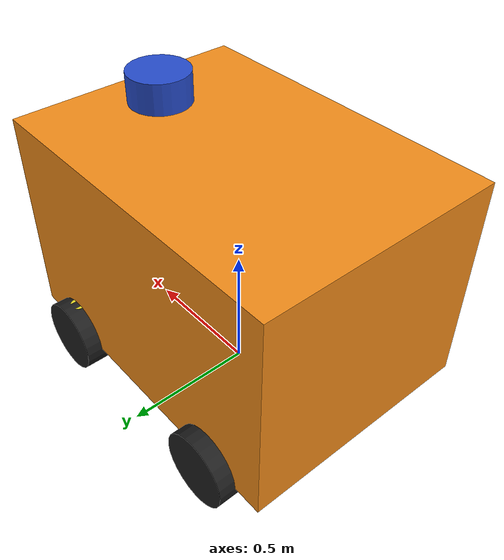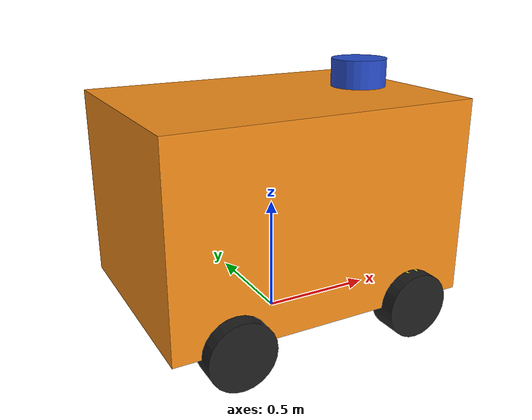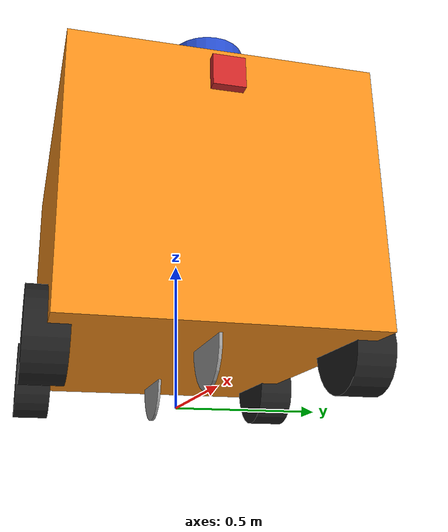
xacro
<?xml version="1.0"?>
<robot xmlns:xacro="http://www.ros.org/wiki/xacro"  name="mrover">

    <xacro:include filename="robot_core_noetic_main.xacro" />
    <xacro:include filename="sensors/lidar.xacro" />
    <xacro:include filename="sensors/camera.xacro" />
    <xacro:include filename="sensors/imu.xacro" />

</robot>

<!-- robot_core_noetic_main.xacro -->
<robot xmlns:xacro="http://www.ros.org/wiki/xacro" >
    <xacro:include filename="inertial_macros.xacro"/>
    <xacro:include filename="materials.xacro"/>

    <!-- Constants for robot dimensions -->
    <xacro:property name="PI" value="3.1415926535897931"/>
    <xacro:property name="base_mass" value="8.0" /> <!-- arbitrary value for base mass -->
    <xacro:property name="base_width" value="0.94" />
    <xacro:property name="base_length" value="1.3" />
    <xacro:property name="base_height" value="0.83" />
    <xacro:property name="wheelbase" value="0.8" />
    <xacro:property name="wheel_mass" value="0.34055" /> <!-- arbitrary value for wheel mass -->
    <xacro:property name="wheel_len" value="0.125" />
    <xacro:property name="wheel_radius" value="0.1397" />
    <xacro:property name="steer_mass" value="0.34055" /> <!-- arbitrary value for wheel mass -->
    <xacro:property name="steer_len" value="0.025" />
    <xacro:property name="steer_radius" value="0.03" />

    <!-- Base Link -->
    <link name="base_link" />
    <!-- BASE_FOOTPRINT LINK -->

    <joint name="base_footprint_joint" type="fixed">
        <parent link="base_link"/>
        <child link="base_footprint"/>
        <origin xyz="0 0 0" rpy="0 0 0"/>
    </joint>

    <link name="base_footprint">
    </link>

    <!-- Chassis -->

    <link name="chassis_link">
        <visual>
            <origin xyz="0 0 0" rpy="0 0 0"/>
            <geometry>
                <box size="${base_length} ${base_width} ${base_height}"/>
            </geometry>
            <material name="orange"/>
        </visual>
        <collision>
            <origin xyz="0 0 0" rpy="0 0 0"/>
            <geometry>
                <box size="${base_length} ${base_width} ${base_height}"/>
            </geometry>
        </collision>
        <inertial>
            <origin xyz="0 0 0" rpy="0 0 0"/>
            <mass value="${base_mass}"/>
            <inertia
                ixx="0.000270" ixy="0.0" ixz="0.0"
                iyy="0.000270" iyz="0.0"
                izz="0.000426"/>
        </inertial>
    </link>
    <gazebo reference="chassis_link">
        <material>Gazebo/Orange</material>
    </gazebo>

    <joint name="chassis_joint" type="fixed">
        <parent link="base_link"/>
        <child link="chassis_link"/>
        <origin xyz="0 0 ${base_height/2 + wheel_radius}" rpy="0 0 0"/>
        <axis xyz="0 0 1"/>
        <dynamics damping="0.2"/>
    </joint>

    <!-- rear wheels -->

    <!-- virtual rear wheel -->

    <link name="virtual_rear_wheel">
        <visual>
            <origin xyz="0 0 0" rpy="${PI/2} 0 ${PI/2}"/>
            <geometry>
                <cylinder length="0.01" radius="${wheel_radius}"/>
            </geometry>
            <material name="invisible"/>
        </visual>
        <collision>
            <origin xyz="0 0 0" rpy="${PI/2} 0 ${PI/2}"/>
            <geometry>
                <cylinder length="0.01" radius="${wheel_radius}"/>
            </geometry>
        </collision>
        <inertial>
            <origin xyz="0 0 0" rpy="${PI/2} 0 ${PI/2}"/>
            <mass value="${wheel_mass}"/>
            <inertia
                ixx="0.000270" ixy="0.0" ixz="0.0"
                iyy="0.000270" iyz="0.0"
                izz="0.000426"/>
        </inertial>
    </link>
    <gazebo reference="virtual_rear_wheel">
        <material>Gazebo/GreyTransparent</material>
    </gazebo>

    <joint name="virtual_rear_wheel_joint" type="continuous">
        <parent link="chassis_link"/>
        <child link="virtual_rear_wheel"/>
        <origin xyz="-${wheelbase/2} 0 -${base_height/2}" rpy="0 0 ${PI/2}"/>
        <axis xyz="1 0 0"/>
        <limit effort="100.0" velocity="100.0"/>
        <dynamics damping="0.2"/>
    </joint>

    <!-- rear right wheel -->

    <link name="rear_right_wheel">
        <visual>
            <origin xyz="0 0 0" rpy="${PI/2} 0 ${PI/2}"/>
            <geometry>
                <cylinder length="${wheel_len}" radius="${wheel_radius}"/>
            </geometry>
            <material name="black"/>
        </visual>
        <collision>
            <origin xyz="0 0 0" rpy="${PI/2} 0 ${PI/2}"/>
            <geometry>
                <cylinder length="${wheel_len}" radius="${wheel_radius}"/>
            </geometry>
        </collision>
        <inertial>
            <origin xyz="0 0 0" rpy="${PI/2} 0 ${PI/2}"/>
            <mass value="${wheel_mass}"/>
            <inertia
                ixx="0.000270" ixy="0.0" ixz="0.0"
                iyy="0.000270" iyz="0.0"
                izz="0.000426"/>
        </inertial>
    </link>
    <gazebo reference="rear_right_wheel">
        <material>Gazebo/Blue</material>
    </gazebo>

    <joint name="rear_right_wheel_joint" type="continuous">
        <parent link="chassis_link"/>
        <child link="rear_right_wheel"/>
        <origin xyz="-${wheelbase/2} ${base_width/2} -${base_height/2}" rpy="0 0 ${PI/2}"/>
        <axis xyz="1 0 0"/>
        <limit effort="100.0" velocity="100.0"/>
        <dynamics damping="0.2"/>
        <mimic joint="virtual_rear_wheel_joint" multiplier="1.0" offset="0.0"/>
    </joint>

    <!-- rear left wheel -->
    <link name="rear_left_wheel">
        <visual>
            <origin xyz="0 0 0" rpy="${PI/2} 0 ${PI/2}"/>
            <geometry>
                <cylinder length="${wheel_len}" radius="${wheel_radius}"/>
            </geometry>
            <material name="black"/>
        </visual>
        <collision>
            <origin xyz="0 0 0" rpy="${PI/2} 0 ${PI/2}"/>
            <geometry>
                <cylinder length="${wheel_len}" radius="${wheel_radius}"/>
            </geometry>
        </collision>
        <inertial>
            <origin xyz="0 0 0" rpy="${PI/2} 0 ${PI/2}"/>
            <mass value="${wheel_mass}"/>
            <inertia
            ixx="0.000270" ixy="0.0" ixz="0.0"
            iyy="0.000270" iyz="0.0"
            izz="0.000426"/>
        </inertial>
    </link>
    <gazebo reference="rear_left_wheel">
        <material>Gazebo/Blue</material>
    </gazebo>

    <joint name="rear_left_wheel_joint" type="continuous">
        <parent link="chassis_link" />
        <child link="rear_left_wheel" />
        <origin xyz="-${wheelbase/2} -${base_width/2} -${base_height/2}" rpy="0 0 ${PI/2}"/>
        <axis xyz="1 0 0"/>
        <limit effort="100.0" velocity="100.0"/>
        <dynamics damping="0.2"/>
        <mimic joint="virtual_rear_wheel_joint" multiplier="1.0" offset="0.0"/>
    </joint>

    <!-- front wheels -->

    <!-- virtual front wheel -->

    <link name="virtual_front_steer">
        <visual>
        <origin xyz="0 0 0" rpy="${PI/2} 0 ${PI/2}"/>
        <geometry>
            <cylinder length="0.01" radius="${wheel_radius}"/>
        </geometry>
        <material name="invisible"/>
        </visual>
        <collision>
                <origin xyz="0 0 0" rpy="${PI/2} 0 ${PI/2}"/>
                <geometry>
                    <cylinder length="0.01" radius="${wheel_radius}"/>
                </geometry>
        </collision>
        <inertial>
                <origin xyz="0 0 0" rpy="${PI/2} 0 ${PI/2}"/>
                <mass value="${wheel_mass}"/>
                <inertia
                    ixx="0.000270" ixy="0.0" ixz="0.0"
                    iyy="0.000270" iyz="0.0"
                    izz="0.000426"/>
        </inertial>
    </link>
    <gazebo reference="virtual_front_steer">
        <material>Gazebo/GreyTransparent</material>
    </gazebo>

    <joint name="virtual_front_steer_joint" type="revolute">
        <parent link="chassis_link"/>
        <child link="virtual_front_steer"/>
        <origin xyz="${wheelbase/2} 0 -${base_height/2}" rpy="0 0 ${PI/2}"/>
        <axis xyz="0 0 1"/>
        <limit lower="-0.4" upper="0.4" effort="100.0" velocity="0.0"/>
        <dynamics damping="0.2"/>
    </joint>

    <!-- front right wheel -->
    <link name="front_right_steer">
        <visual>
            <origin xyz="0 0 0" rpy="${PI/2} 0 ${PI/2}"/>
            <geometry>
                <cylinder length="${steer_len}" radius="${steer_radius}"/>
            </geometry>
            <material name="yellow"/>
        </visual>
        <collision>
            <origin xyz="0 0 0" rpy="${PI/2} 0 ${PI/2}"/>
            <geometry>
                <cylinder length="${steer_len}" radius="${steer_radius}"/>
            </geometry>
        </collision>
        <inertial>
            <origin xyz="0 0 0" rpy="${PI/2} 0 ${PI/2}"/>
            <mass value="${steer_mass}"/>
            <inertia
                ixx="0.000270" ixy="0.0" ixz="0.0"
                iyy="0.000270" iyz="0.0"
                izz="0.000426"/>
        </inertial>
    </link>
    <gazebo reference="front_right_steer">
        <material>Gazebo/Yellow</material>
    </gazebo>

    <joint name="front_right_steer_joint" type="revolute">
        <parent link="chassis_link" />
        <child link="front_right_steer" />
        <origin xyz="${wheelbase/2} ${base_width/2} -${base_height/2 -wheel_len}" rpy="0 ${PI/2} 0"/>
        <axis xyz="-1 0 0"/>
        <limit lower="-0.4" upper="0.4" effort="100.0" velocity="0.0"/>
        <dynamics damping="0.2"/>
        <mimic joint="virtual_front_steer_joint" multiplier="1.0" offset="0.0"/>
    </joint>

    <link name="front_right_wheel">
        <visual>
            <origin xyz="0 0 0" rpy="${PI/2} 0 ${PI/2}"/>
            <geometry>
                <cylinder length="${wheel_len}" radius="${wheel_radius}"/>
            </geometry>
            <material name="black"/>
        </visual>
        <collision>
            <origin xyz="0 0 0" rpy="${PI/2} 0 ${PI/2}"/>
            <geometry>
                <cylinder length="${wheel_len}" radius="${wheel_radius}"/>
            </geometry>
        </collision>
        <inertial>
            <origin xyz="0 0 0" rpy="${PI/2} 0 ${PI/2}"/>
            <mass value="${wheel_mass}"/>
            <inertia
                ixx="0.000270" ixy="0.0" ixz="0.0"
                iyy="0.000270" iyz="0.0"
                izz="0.000426"/>
        </inertial>
    </link>
    <gazebo reference="front_right_wheel">
        <material>Gazebo/Blue</material>
    </gazebo>

    <joint name="front_right_wheel_joint" type="continuous">
        <parent link="front_right_steer" />
        <child link="front_right_wheel" />
        <origin xyz="${wheel_len} 0 0" rpy="0 0 ${PI/2}"/>
        <axis xyz="1 0 0"/>
        <mimic joint="virtual_rear_wheel_joint" multiplier="1.0" offset="0.0"/>
    </joint>

    <!-- front left steering -->
    <link name="front_left_steer">
        <visual>
            <origin xyz="0 0 0" rpy="${PI/2} 0 ${PI/2}"/>
            <geometry>
                <cylinder length="${steer_len}" radius="${steer_radius}"/>
            </geometry>
            <material name="yellow"/>
        </visual>
        <collision>
            <origin xyz="0 0 0" rpy="${PI/2} 0 ${PI/2}"/>
            <geometry>
                <cylinder length="${steer_len}" radius="${steer_radius}"/>
            </geometry>
        </collision>
        <inertial>
            <origin xyz="0 0 0" rpy="${PI/2} 0 ${PI/2}"/>
            <mass value="${steer_mass}"/>
            <inertia
                ixx="0.000270" ixy="0.0" ixz="0.0"
                iyy="0.000270" iyz="0.0"
                izz="0.000426"/>
        </inertial>

    </link>
    <gazebo reference="front_left_steer">
        <material>Gazebo/Yellow</material>
    </gazebo>

    <joint name="front_left_steer_joint" type="revolute">
        <parent link="chassis_link" />
        <child link="front_left_steer" />
        <origin xyz="${wheelbase/2} -${base_width/2} -${base_height/2 - wheel_len}" rpy="0 ${PI/2} 0"/>
        <axis xyz="-1 0 0"/>
        <limit lower="-0.4" upper="0.4" effort="100.0" velocity="0.0"/>
        <dynamics damping="0.2"/>
        <mimic joint="virtual_front_steer_joint" multiplier="1.0" offset="0.0"/>
    </joint>

    <link name="front_left_wheel">
        <visual>
            <origin xyz="0 0 0" rpy="${PI/2} 0 ${PI/2}"/>
            <geometry>
                <cylinder length="${wheel_len}" radius="${wheel_radius}"/>
            </geometry>
            <material name="black"/>
        </visual>
        <collision>
            <origin xyz="0 0 0" rpy="${PI/2} 0 ${PI/2}"/>
            <geometry>
                <cylinder length="${wheel_len}" radius="${wheel_radius}"/>
            </geometry>
        </collision>
        <inertial>
            <origin xyz="0 0 0" rpy="${PI/2} 0 ${PI/2}"/>
            <mass value="${wheel_mass}"/>
            <inertia
                ixx="0.000270" ixy="0.0" ixz="0.0"
                iyy="0.000270" iyz="0.0"
                izz="0.000426"/>
        </inertial>

    </link>
    <gazebo reference="front_left_wheel">
        <material>Gazebo/Blue</material>
    </gazebo>

    <joint name="front_left_wheel_joint" type="continuous">
        <parent link="front_left_steer" />
        <child link="front_left_wheel" />
        <origin xyz="${wheel_len} 0 0" rpy="0 0 ${PI/2}"/>
        <axis xyz="1 0 0"/>
        <mimic joint="virtual_rear_wheel_joint" multiplier="1.0" offset="0.0"/>
    </joint>

    <transmission name="virtual_front_steer_joint_trans">
        <type>transmission_interface/SimpleTransmission</type>
        <joint name="virtual_front_steer_joint">
            <hardwareInterface>hardware_interface/VelocityJointInterface</hardwareInterface>
            <hardwareInterface>hardware_interface/JointStateInterface</hardwareInterface>
            <hardwareInterface>hardware_interface/PositionJointInterface</hardwareInterface>
        </joint>
        <actuator name="virtual_front_steer_joint_actuator">
            <mechanicalReduction>7</mechanicalReduction>
            <hardwareInterface>VelocityJointInterface</hardwareInterface>
        </actuator>
    </transmission>

    <transmission name="front_right_steer_joint_trans" >
        <type>transmission_interface/SimpleTransmission</type>
        <actuator name="front_right_steer_joint_motor"/>
        <joint name="front_right_steer_joint">
            <hardwareInterface>EffortJointInterface</hardwareInterface>
        </joint>
        <mechanicalReduction>1</mechanicalReduction>
        <motorTorqueConstant>1</motorTorqueConstant>
    </transmission>
    <transmission name="front_left_steer_joint_trans" >
        <type>transmission_interface/SimpleTransmission</type>
        <actuator name="front_left_steer_joint_motor"/>
        <joint name="front_left_steer_joint">
            <hardwareInterface>EffortJointInterface</hardwareInterface>
        </joint>
        <mechanicalReduction>1</mechanicalReduction>
        <motorTorqueConstant>1</motorTorqueConstant>
    </transmission>
    <transmission name="front_left_wheel_joint_trans" >
        <type>transmission_interface/SimpleTransmission</type>
        <actuator name="front_left_wheel_joint_motor"/>
        <joint name="front_left_wheel_joint">
            <hardwareInterface>EffortJointInterface</hardwareInterface>
        </joint>
        <mechanicalReduction>1</mechanicalReduction>
        <motorTorqueConstant>1</motorTorqueConstant>
    </transmission>

    <transmission name="front_right_wheel_joint_trans" >
        <type>transmission_interface/SimpleTransmission</type>
        <actuator name="front_right_wheel_joint_motor"/>
        <joint name="front_right_wheel_joint">
            <hardwareInterface>EffortJointInterface</hardwareInterface>
        </joint>
        <mechanicalReduction>1</mechanicalReduction>
        <motorTorqueConstant>1</motorTorqueConstant>
    </transmission>

    <transmission name="rear_left_wheel_joint_trans" >
        <type>transmission_interface/SimpleTransmission</type>
        <actuator name="rear_left_wheel_joint_motor"/>
        <joint name="rear_left_wheel_joint">
            <hardwareInterface>EffortJointInterface</hardwareInterface>
        </joint>
        <mechanicalReduction>1</mechanicalReduction>
        <motorTorqueConstant>1</motorTorqueConstant>
    </transmission>
    <transmission name="rear_right_wheel_joint_trans" >
        <type>transmission_interface/SimpleTransmission</type>
        <actuator name="rear_right_wheel_joint_motor"/>
        <joint name="rear_right_wheel_joint">
            <hardwareInterface>EffortJointInterface</hardwareInterface>
        </joint>
        <mechanicalReduction>1</mechanicalReduction>
        <motorTorqueConstant>1</motorTorqueConstant>
    </transmission>

    <!-- Transmission is important to link the joints and the controller -->

    <transmission name="virtual_rear_wheel_trans">
        <type>transmission_interface/SimpleTransmission</type>
        <joint name="virtual_rear_wheel">
            <hardwareInterface>hardware_interface/VelocityJointInterface</hardwareInterface>
            <hardwareInterface>hardware_interface/JointStateInterface</hardwareInterface>
            <hardwareInterface>hardware_interface/PositionJointInterface</hardwareInterface>
        </joint>
        <actuator name="virtual_rear_wheel_actuator">
            <mechanicalReduction>7</mechanicalReduction>
            <hardwareInterface>VelocityJointInterface</hardwareInterface>
        </actuator>
    </transmission>

</robot>

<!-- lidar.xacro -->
<robot xmlns:xacro="http://www.ros.org/wiki/xacro" >
<!-- Constants for robot dimensions -->

    <xacro:property name="lidar_mass" value="0.2" /> <!-- arbitrary value for base mass -->
    <xacro:property name="lidar_radius" value="0.12" />
    <xacro:property name="lidar_length" value="0.12" />

    <joint name="laser_joint" type="fixed">
        <parent link="chassis_link"/>
        <child link="laser_frame"/>
        <origin xyz="${base_length/3}  0 ${base_height/2 + lidar_length/2 }" rpy="0 0 0"/>
    </joint>

    <link name="laser_frame">
        <visual>
            <geometry>
                <cylinder radius="${lidar_radius}" length="${lidar_length}"/>
            </geometry>
            <material name="blue"/>
        </visual>
        <collision>
            <geometry>
                <cylinder radius="${lidar_radius}" length="${lidar_length}"/>
            </geometry>
        </collision>
        <xacro:inertial_cylinder mass="${lidar_mass}" length="${lidar_length}" radius="${lidar_radius}">
            <origin xyz="0 0 0" rpy="0 0 0"/>
        </xacro:inertial_cylinder>
    </link>
    <gazebo reference="laser_frame">
        <material>Gazebo/Black</material>
           <sensor name="laser" type="ray">
            <pose> 0 0 0 0 0 0 </pose>
            <visualize>false</visualize>
            <update_rate>20</update_rate>
            <ray>
                <scan>
                    <horizontal>
                        <samples>360</samples>
                        <resolution>1</resolution>
                        <min_angle>-3.14</min_angle>
                        <max_angle>3.14</max_angle>
                    </horizontal>
                </scan>
                <range>
                    <min>0.3</min>
                    <max>12.0</max>
                    <resolution>0.01</resolution>
                </range>
                <noise>
                    <type>gaussian</type>
                    <mean>0.0</mean>
                    <stddev>0.01</stddev>
                </noise>
            </ray>
            <plugin name="gazebo_ros_laser_controller" filename="libgazebo_ros_laser.so">
                <robotNamespace>/</robotNamespace>
                <topicName>/scan</topicName>
                <frameName>laser_frame</frameName>
            </plugin>
        </sensor>
    </gazebo>

</robot>

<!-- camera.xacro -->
<robot xmlns:xacro="http://www.ros.org/wiki/xacro" >

    <!-- Camera properties -->
    <xacro:property name="hfov" value="1.089" />
    <xacro:property name="cam_width" value="640" />
    <xacro:property name="cam_height" value="480" />
    <xacro:property name="near" value="0.05" />
    <xacro:property name="far" value="8.0" />
    <xacro:property name="camera_height_dif" value="0.5" />
    <xacro:property name="camera_size_x" value="0.03" />
    <xacro:property name="camera_size_y" value="0.1" />
    <xacro:property name="camera_size_z" value="0.1" />

    <joint name="camera_joint" type="fixed">
        <parent link="chassis_link"/>
        <child link="camera_link"/>
        <origin xyz="${base_length/2 + camera_size_x/2 } 0 ${base_height - camera_height_dif}" rpy="0 0 0"/>
    </joint>

    <link name="camera_link">
        <visual>
            <geometry>
                <box size="${camera_size_x} ${camera_size_y} ${camera_size_z}"/>
            </geometry>
            <material name="red"/>
        </visual>
    </link>

    <joint name="camera_optical_joint" type="fixed">
        <parent link="camera_link"/>
        <child link="camera_link_optical"/>
        <origin xyz="0 0 0" rpy="${-PI/2} 0 ${-PI/2}"/>
    </joint>

    <link name="camera_link_optical"></link>
    <gazebo reference="camera_link">
        <material>Gazebo/Red</material>
        <sensor name="camera" type="camera">
            <pose> 0 0 0 0 0 0 </pose>
            <visualize>true</visualize>
            <update_rate>10</update_rate>
            <camera>
                <horizontal_fov>${hfov}</horizontal_fov>
                <image>
                    <format>R8G8B8</format>
                    <width>${cam_width}</width>
                    <height>${cam_height}</height>
                </image>
                <clip>
                    <near>${near}</near>
                    <far>${far}</far>
                </clip>
            </camera>
            <plugin name="gazebo_ros_camera" filename="libgazebo_ros_camera.so">
                <robotNamespace>/</robotNamespace>
                <cameraName>camera</cameraName>
                <imageTopicName>image_raw</imageTopicName>
                <cameraInfoTopicName>camera_info</cameraInfoTopicName>
                <frameName>camera_link_optical</frameName>
            </plugin>
        </sensor>
    </gazebo>

</robot>

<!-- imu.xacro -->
<robot xmlns:xacro="http://www.ros.org/wiki/xacro" >

    <!-- Camera properties -->
    <xacro:property name="imu_mass" value="0.085" />
    <xacro:property name="camera_height_dif" value="0.5" />
    <xacro:property name="camera_size_x" value="0.03" />
    <xacro:property name="camera_size_y" value="0.1" />
    <xacro:property name="camera_size_z" value="0.1" />

    <joint name="imu_sensor_joint" type="fixed">
        <axis xyz="0 0 1" />
        <parent link="chassis_link"/>
        <child link="imu_sensor_link"/>
        <origin xyz="${base_length/2 + camera_size_x/2 } 0 ${base_height - camera_height_dif}" rpy="0 0 0"/>
    </joint>

    <link name="imu_sensor_link">
        <sensor name="imu_sensor" type="imu">
            <origin xyz="0 0 0" rpy="0 0 0"/>
            <update_rate>100</update_rate>
            <imu>
                <topic>mavros/imu/data</topic>
                <frame>imu_frame</frame>
                <!-- Add any additional configuration parameters here -->
            </imu>
        </sensor>
    </link>

     <!-- Transmission for the IMU sensor -->

    <gazebo reference="imu_sensor_link">
        <gravity>true</gravity>
        <sensor name='imu_sensor' type='imu'>
            <always_on>1</always_on>
            <update_rate>1000</update_rate>
            <visualize>1</visualize>
            <topic>__default_topic__</topic>
            <plugin name='imu_plugin' filename='libgazebo_ros_imu_sensor.so'>
                <topicName>imu_data</topicName>
                <bodyName>imu_sensor_link</bodyName>
                <updateRateHZ>10.0</updateRateHZ>
                <gaussianNoise>0.0</gaussianNoise>
                <xyzOffset>0 0 0</xyzOffset>
                <rpyOffset>0 0 0</rpyOffset>
            </plugin>
            <pose>0 0 0 0 0 0</pose>
        </sensor>
    </gazebo>

</robot>
